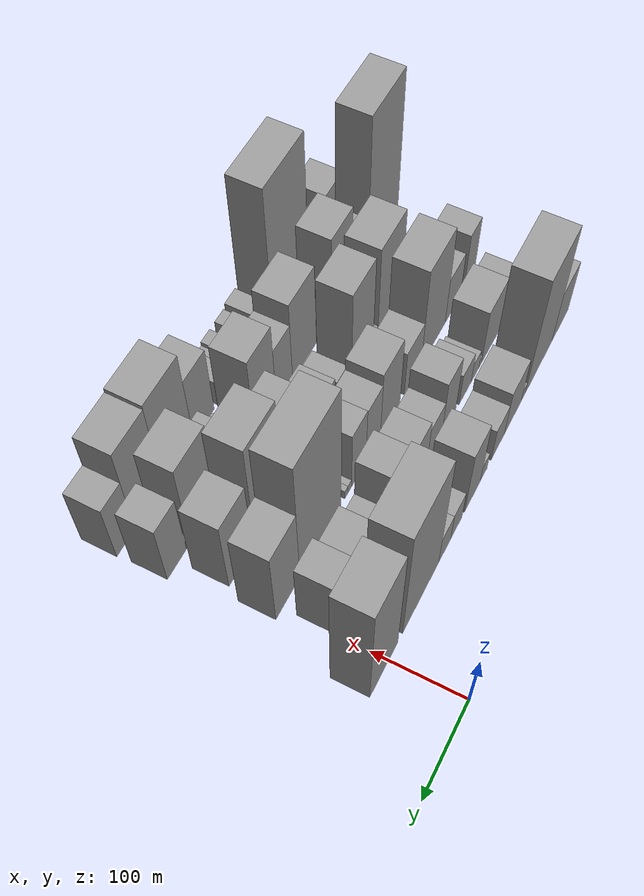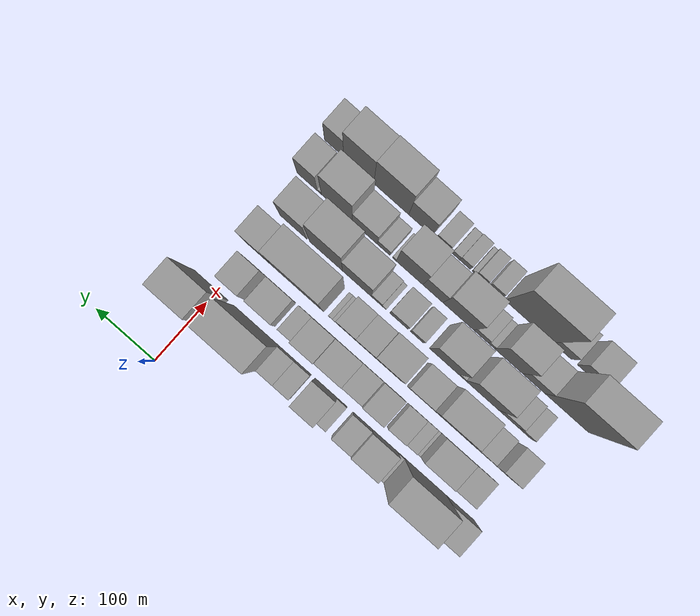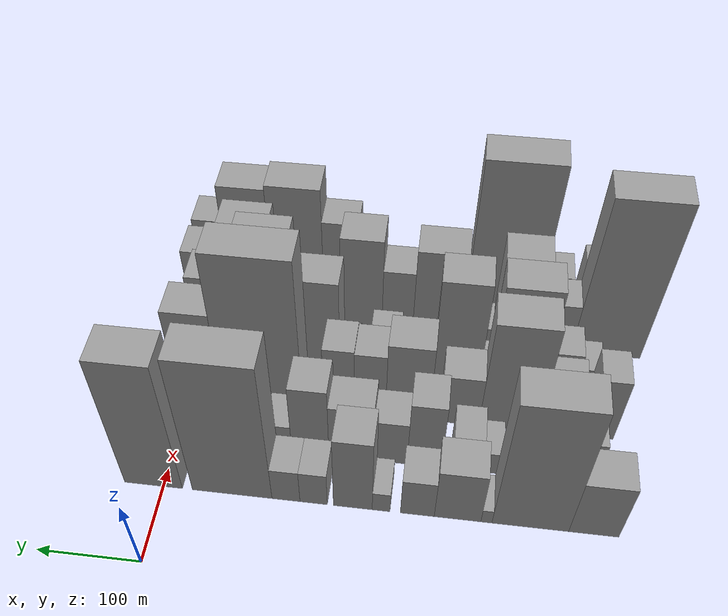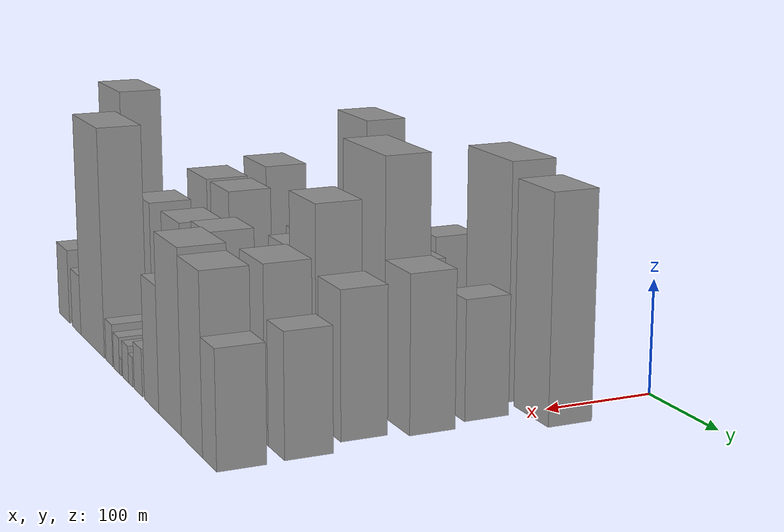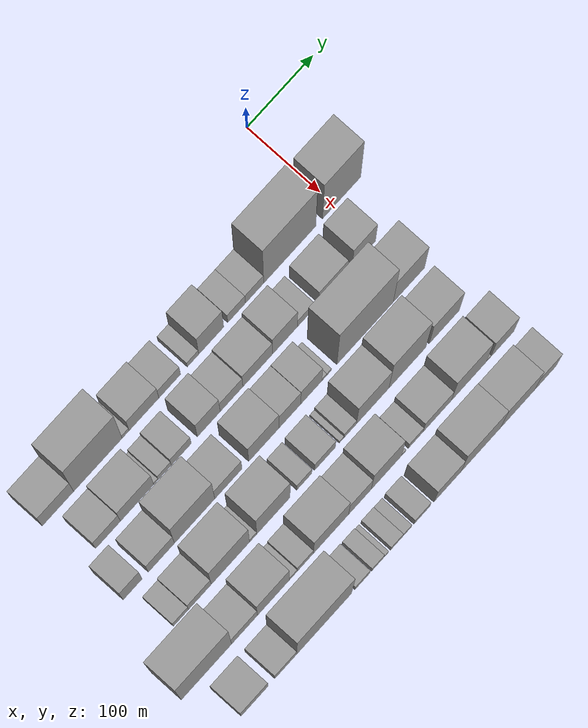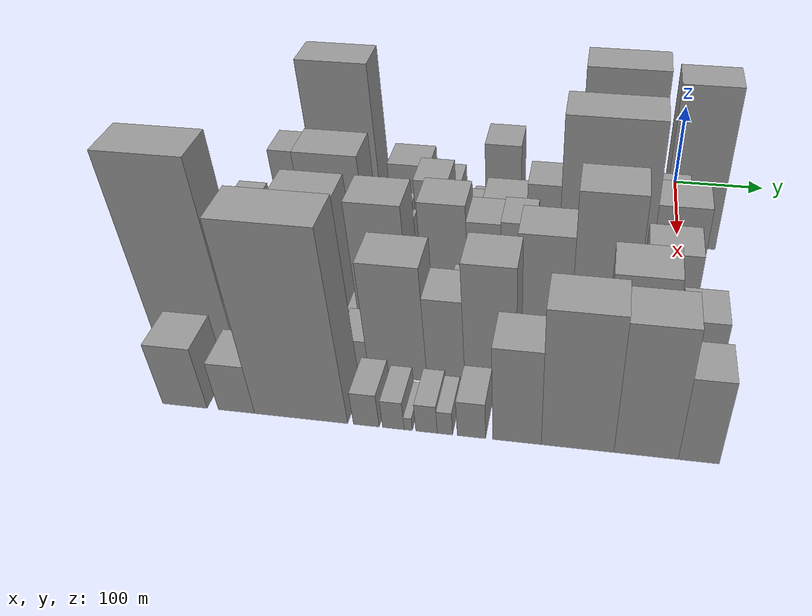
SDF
<sdf version="1.6">
 <world name="default">
  <model name="building_18">
   <static>1</static>
   <pose>100.0000 -414.6206 0 0.000000 0.000000 0.000000</pose>
   <link name="link">
    <pose>0 0 42.00 0 0 0</pose>
    <collision name="collision"><geometry><box><size>40.0000 46.6623 84.0000</size></box></geometry></collision>
    <visual name="visual">
     <cast_shadows>0</cast_shadows>
     <geometry><box><size>40.0000 46.6623 84.0000</size></box></geometry>
     <material>
      <script>
       <uri>model://grey_wall/materials/scripts</uri>
       <uri>model://grey_wall/materials/textures</uri>
       <name>vrc/grey_wall</name>
      </script>
     </material>
    </visual>
   </link>
  </model>
  <model name="building_19">
   <static>1</static>
   <pose>100.0000 -355.2714 0 0.000000 0.000000 0.000000</pose>
   <link name="link">
    <pose>0 0 96.00 0 0 0</pose>
    <collision name="collision"><geometry><box><size>40.0000 72.0362 192.0000</size></box></geometry></collision>
    <visual name="visual">
     <cast_shadows>0</cast_shadows>
     <geometry><box><size>40.0000 72.0362 192.0000</size></box></geometry>
     <material>
      <script>
       <uri>model://grey_wall/materials/scripts</uri>
       <uri>model://grey_wall/materials/textures</uri>
       <name>vrc/grey_wall</name>
      </script>
     </material>
    </visual>
   </link>
  </model>
  <model name="building_20">
   <static>1</static>
   <pose>100.0000 -314.0269 0 0.000000 0.000000 0.000000</pose>
   <link name="link">
    <pose>0 0 10.50 0 0 0</pose>
    <collision name="collision"><geometry><box><size>40.0000 10.4528 21.0000</size></box></geometry></collision>
    <visual name="visual">
     <cast_shadows>0</cast_shadows>
     <geometry><box><size>40.0000 10.4528 21.0000</size></box></geometry>
     <material>
      <script>
       <uri>model://grey_wall/materials/scripts</uri>
       <uri>model://grey_wall/materials/textures</uri>
       <name>vrc/grey_wall</name>
      </script>
     </material>
    </visual>
   </link>
  </model>
  <model name="building_21">
   <static>1</static>
   <pose>100.0000 -286.6192 0 0.000000 0.000000 0.000000</pose>
   <link name="link">
    <pose>0 0 39.00 0 0 0</pose>
    <collision name="collision"><geometry><box><size>40.0000 44.3624 78.0000</size></box></geometry></collision>
    <visual name="visual">
     <cast_shadows>0</cast_shadows>
     <geometry><box><size>40.0000 44.3624 78.0000</size></box></geometry>
     <material>
      <script>
       <uri>model://grey_wall/materials/scripts</uri>
       <uri>model://grey_wall/materials/textures</uri>
       <name>vrc/grey_wall</name>
      </script>
     </material>
    </visual>
   </link>
  </model>
  <model name="building_22">
   <static>1</static>
   <pose>100.0000 -248.2549 0 0.000000 0.000000 0.000000</pose>
   <link name="link">
    <pose>0 0 28.50 0 0 0</pose>
    <collision name="collision"><geometry><box><size>40.0000 32.3662 57.0000</size></box></geometry></collision>
    <visual name="visual">
     <cast_shadows>0</cast_shadows>
     <geometry><box><size>40.0000 32.3662 57.0000</size></box></geometry>
     <material>
      <script>
       <uri>model://grey_wall/materials/scripts</uri>
       <uri>model://grey_wall/materials/textures</uri>
       <name>vrc/grey_wall</name>
      </script>
     </material>
    </visual>
   </link>
  </model>
  <model name="building_23">
   <static>1</static>
   <pose>100.0000 -213.4793 0 0.000000 0.000000 0.000000</pose>
   <link name="link">
    <pose>0 0 15.00 0 0 0</pose>
    <collision name="collision"><geometry><box><size>40.0000 17.1850 30.0000</size></box></geometry></collision>
    <visual name="visual">
     <cast_shadows>0</cast_shadows>
     <geometry><box><size>40.0000 17.1850 30.0000</size></box></geometry>
     <material>
      <script>
       <uri>model://grey_wall/materials/scripts</uri>
       <uri>model://grey_wall/materials/textures</uri>
       <name>vrc/grey_wall</name>
      </script>
     </material>
    </visual>
   </link>
  </model>
  <model name="building_24">
   <static>1</static>
   <pose>100.0000 -186.1850 0 0.000000 0.000000 0.000000</pose>
   <link name="link">
    <pose>0 0 55.50 0 0 0</pose>
    <collision name="collision"><geometry><box><size>40.0000 37.4036 111.0000</size></box></geometry></collision>
    <visual name="visual">
     <cast_shadows>0</cast_shadows>
     <geometry><box><size>40.0000 37.4036 111.0000</size></box></geometry>
     <material>
      <script>
       <uri>model://grey_wall/materials/scripts</uri>
       <uri>model://grey_wall/materials/textures</uri>
       <name>vrc/grey_wall</name>
      </script>
     </material>
    </visual>
   </link>
  </model>
  <model name="building_25">
   <static>1</static>
   <pose>100.0000 -148.1943 0 0.000000 0.000000 0.000000</pose>
   <link name="link">
    <pose>0 0 25.50 0 0 0</pose>
    <collision name="collision"><geometry><box><size>40.0000 26.5778 51.0000</size></box></geometry></collision>
    <visual name="visual">
     <cast_shadows>0</cast_shadows>
     <geometry><box><size>40.0000 26.5778 51.0000</size></box></geometry>
     <material>
      <script>
       <uri>model://grey_wall/materials/scripts</uri>
       <uri>model://grey_wall/materials/textures</uri>
       <name>vrc/grey_wall</name>
      </script>
     </material>
    </visual>
   </link>
  </model>
  <model name="building_26">
   <static>1</static>
   <pose>100.0000 -121.1936 0 0.000000 0.000000 0.000000</pose>
   <link name="link">
    <pose>0 0 25.50 0 0 0</pose>
    <collision name="collision"><geometry><box><size>40.0000 27.4237 51.0000</size></box></geometry></collision>
    <visual name="visual">
     <cast_shadows>0</cast_shadows>
     <geometry><box><size>40.0000 27.4237 51.0000</size></box></geometry>
     <material>
      <script>
       <uri>model://grey_wall/materials/scripts</uri>
       <uri>model://grey_wall/materials/textures</uri>
       <name>vrc/grey_wall</name>
      </script>
     </material>
    </visual>
   </link>
  </model>
  <model name="building_27">
   <static>1</static>
   <pose>100.0000 -68.1438 0 0.000000 0.000000 0.000000</pose>
   <link name="link">
    <pose>0 0 102.00 0 0 0</pose>
    <collision name="collision"><geometry><box><size>40.0000 78.6760 204.0000</size></box></geometry></collision>
    <visual name="visual">
     <cast_shadows>0</cast_shadows>
     <geometry><box><size>40.0000 78.6760 204.0000</size></box></geometry>
     <material>
      <script>
       <uri>model://grey_wall/materials/scripts</uri>
       <uri>model://grey_wall/materials/textures</uri>
       <name>vrc/grey_wall</name>
      </script>
     </material>
    </visual>
   </link>
  </model>
  <model name="building_28">
   <static>1</static>
   <pose>100.0000 10.0778 0 0.000000 0.000000 0.000000</pose>
   <link name="link">
    <pose>0 0 96.00 0 0 0</pose>
    <collision name="collision"><geometry><box><size>40.0000 57.7671 192.0000</size></box></geometry></collision>
    <visual name="visual">
     <cast_shadows>0</cast_shadows>
     <geometry><box><size>40.0000 57.7671 192.0000</size></box></geometry>
     <material>
      <script>
       <uri>model://grey_wall/materials/scripts</uri>
       <uri>model://grey_wall/materials/textures</uri>
       <name>vrc/grey_wall</name>
      </script>
     </material>
    </visual>
   </link>
  </model>
  <model name="building_64">
   <static>1</static>
   <pose>155.0000 -400.5244 0 0.000000 0.000000 0.000000</pose>
   <link name="link">
    <pose>0 0 33.00 0 0 0</pose>
    <collision name="collision"><geometry><box><size>40.0000 36.8902 66.0000</size></box></geometry></collision>
    <visual name="visual">
     <cast_shadows>0</cast_shadows>
     <geometry><box><size>40.0000 36.8902 66.0000</size></box></geometry>
     <material>
      <script>
       <uri>model://grey_wall/materials/scripts</uri>
       <uri>model://grey_wall/materials/textures</uri>
       <name>vrc/grey_wall</name>
      </script>
     </material>
    </visual>
   </link>
  </model>
  <model name="building_65">
   <static>1</static>
   <pose>155.0000 -357.3834 0 0.000000 0.000000 0.000000</pose>
   <link name="link">
    <pose>0 0 45.00 0 0 0</pose>
    <collision name="collision"><geometry><box><size>40.0000 49.3919 90.0000</size></box></geometry></collision>
    <visual name="visual">
     <cast_shadows>0</cast_shadows>
     <geometry><box><size>40.0000 49.3919 90.0000</size></box></geometry>
     <material>
      <script>
       <uri>model://grey_wall/materials/scripts</uri>
       <uri>model://grey_wall/materials/textures</uri>
       <name>vrc/grey_wall</name>
      </script>
     </material>
    </visual>
   </link>
  </model>
  <model name="building_66">
   <static>1</static>
   <pose>155.0000 -329.3998 0 0.000000 0.000000 0.000000</pose>
   <link name="link">
    <pose>0 0 7.50 0 0 0</pose>
    <collision name="collision"><geometry><box><size>40.0000 6.5753 15.0000</size></box></geometry></collision>
    <visual name="visual">
     <cast_shadows>0</cast_shadows>
     <geometry><box><size>40.0000 6.5753 15.0000</size></box></geometry>
     <material>
      <script>
       <uri>model://grey_wall/materials/scripts</uri>
       <uri>model://grey_wall/materials/textures</uri>
       <name>vrc/grey_wall</name>
      </script>
     </material>
    </visual>
   </link>
  </model>
  <model name="building_67">
   <static>1</static>
   <pose>155.0000 -316.3000 0 0.000000 0.000000 0.000000</pose>
   <link name="link">
    <pose>0 0 16.50 0 0 0</pose>
    <collision name="collision"><geometry><box><size>40.0000 19.6243 33.0000</size></box></geometry></collision>
    <visual name="visual">
     <cast_shadows>0</cast_shadows>
     <geometry><box><size>40.0000 19.6243 33.0000</size></box></geometry>
     <material>
      <script>
       <uri>model://grey_wall/materials/scripts</uri>
       <uri>model://grey_wall/materials/textures</uri>
       <name>vrc/grey_wall</name>
      </script>
     </material>
    </visual>
   </link>
  </model>
  <model name="building_68">
   <static>1</static>
   <pose>155.0000 -291.5817 0 0.000000 0.000000 0.000000</pose>
   <link name="link">
    <pose>0 0 27.00 0 0 0</pose>
    <collision name="collision"><geometry><box><size>40.0000 29.8122 54.0000</size></box></geometry></collision>
    <visual name="visual">
     <cast_shadows>0</cast_shadows>
     <geometry><box><size>40.0000 29.8122 54.0000</size></box></geometry>
     <material>
      <script>
       <uri>model://grey_wall/materials/scripts</uri>
       <uri>model://grey_wall/materials/textures</uri>
       <name>vrc/grey_wall</name>
      </script>
     </material>
    </visual>
   </link>
  </model>
  <model name="building_69">
   <static>1</static>
   <pose>155.0000 -250.6024 0 0.000000 0.000000 0.000000</pose>
   <link name="link">
    <pose>0 0 49.50 0 0 0</pose>
    <collision name="collision"><geometry><box><size>40.0000 34.1465 99.0000</size></box></geometry></collision>
    <visual name="visual">
     <cast_shadows>0</cast_shadows>
     <geometry><box><size>40.0000 34.1465 99.0000</size></box></geometry>
     <material>
      <script>
       <uri>model://grey_wall/materials/scripts</uri>
       <uri>model://grey_wall/materials/textures</uri>
       <name>vrc/grey_wall</name>
      </script>
     </material>
    </visual>
   </link>
  </model>
  <model name="building_70">
   <static>1</static>
   <pose>155.0000 -216.5741 0 0.000000 0.000000 0.000000</pose>
   <link name="link">
    <pose>0 0 33.00 0 0 0</pose>
    <collision name="collision"><geometry><box><size>40.0000 33.9102 66.0000</size></box></geometry></collision>
    <visual name="visual">
     <cast_shadows>0</cast_shadows>
     <geometry><box><size>40.0000 33.9102 66.0000</size></box></geometry>
     <material>
      <script>
       <uri>model://grey_wall/materials/scripts</uri>
       <uri>model://grey_wall/materials/textures</uri>
       <name>vrc/grey_wall</name>
      </script>
     </material>
    </visual>
   </link>
  </model>
  <model name="building_71">
   <static>1</static>
   <pose>155.0000 -177.3842 0 0.000000 0.000000 0.000000</pose>
   <link name="link">
    <pose>0 0 40.50 0 0 0</pose>
    <collision name="collision"><geometry><box><size>40.0000 44.4696 81.0000</size></box></geometry></collision>
    <visual name="visual">
     <cast_shadows>0</cast_shadows>
     <geometry><box><size>40.0000 44.4696 81.0000</size></box></geometry>
     <material>
      <script>
       <uri>model://grey_wall/materials/scripts</uri>
       <uri>model://grey_wall/materials/textures</uri>
       <name>vrc/grey_wall</name>
      </script>
     </material>
    </visual>
   </link>
  </model>
  <model name="building_72">
   <static>1</static>
   <pose>155.0000 -136.3937 0 0.000000 0.000000 0.000000</pose>
   <link name="link">
    <pose>0 0 52.50 0 0 0</pose>
    <collision name="collision"><geometry><box><size>40.0000 37.5116 105.0000</size></box></geometry></collision>
    <visual name="visual">
     <cast_shadows>0</cast_shadows>
     <geometry><box><size>40.0000 37.5116 105.0000</size></box></geometry>
     <material>
      <script>
       <uri>model://grey_wall/materials/scripts</uri>
       <uri>model://grey_wall/materials/textures</uri>
       <name>vrc/grey_wall</name>
      </script>
     </material>
    </visual>
   </link>
  </model>
  <model name="building_73">
   <static>1</static>
   <pose>155.0000 -105.1017 0 0.000000 0.000000 0.000000</pose>
   <link name="link">
    <pose>0 0 21.00 0 0 0</pose>
    <collision name="collision"><geometry><box><size>40.0000 25.0723 42.0000</size></box></geometry></collision>
    <visual name="visual">
     <cast_shadows>0</cast_shadows>
     <geometry><box><size>40.0000 25.0723 42.0000</size></box></geometry>
     <material>
      <script>
       <uri>model://grey_wall/materials/scripts</uri>
       <uri>model://grey_wall/materials/textures</uri>
       <name>vrc/grey_wall</name>
      </script>
     </material>
    </visual>
   </link>
  </model>
  <model name="building_74">
   <static>1</static>
   <pose>155.0000 -63.8630 0 0.000000 0.000000 0.000000</pose>
   <link name="link">
    <pose>0 0 37.50 0 0 0</pose>
    <collision name="collision"><geometry><box><size>40.0000 43.4051 75.0000</size></box></geometry></collision>
    <visual name="visual">
     <cast_shadows>0</cast_shadows>
     <geometry><box><size>40.0000 43.4051 75.0000</size></box></geometry>
     <material>
      <script>
       <uri>model://grey_wall/materials/scripts</uri>
       <uri>model://grey_wall/materials/textures</uri>
       <name>vrc/grey_wall</name>
      </script>
     </material>
    </visual>
   </link>
  </model>
  <model name="building_75">
   <static>1</static>
   <pose>155.0000 -38.7111 0 0.000000 0.000000 0.000000</pose>
   <link name="link">
    <pose>0 0 7.50 0 0 0</pose>
    <collision name="collision"><geometry><box><size>40.0000 6.8988 15.0000</size></box></geometry></collision>
    <visual name="visual">
     <cast_shadows>0</cast_shadows>
     <geometry><box><size>40.0000 6.8988 15.0000</size></box></geometry>
     <material>
      <script>
       <uri>model://grey_wall/materials/scripts</uri>
       <uri>model://grey_wall/materials/textures</uri>
       <name>vrc/grey_wall</name>
      </script>
     </material>
    </visual>
   </link>
  </model>
  <model name="building_76">
   <static>1</static>
   <pose>155.0000 -17.6326 0 0.000000 0.000000 0.000000</pose>
   <link name="link">
    <pose>0 0 51.00 0 0 0</pose>
    <collision name="collision"><geometry><box><size>40.0000 35.2581 102.0000</size></box></geometry></collision>
    <visual name="visual">
     <cast_shadows>0</cast_shadows>
     <geometry><box><size>40.0000 35.2581 102.0000</size></box></geometry>
     <material>
      <script>
       <uri>model://grey_wall/materials/scripts</uri>
       <uri>model://grey_wall/materials/textures</uri>
       <name>vrc/grey_wall</name>
      </script>
     </material>
    </visual>
   </link>
  </model>
  <model name="building_114">
   <static>1</static>
   <pose>210.0000 -424.3715 0 0.000000 0.000000 0.000000</pose>
   <link name="link">
    <pose>0 0 46.50 0 0 0</pose>
    <collision name="collision"><geometry><box><size>40.0000 28.2588 93.0000</size></box></geometry></collision>
    <visual name="visual">
     <cast_shadows>0</cast_shadows>
     <geometry><box><size>40.0000 28.2588 93.0000</size></box></geometry>
     <material>
      <script>
       <uri>model://grey_wall/materials/scripts</uri>
       <uri>model://grey_wall/materials/textures</uri>
       <name>vrc/grey_wall</name>
      </script>
     </material>
    </visual>
   </link>
  </model>
  <model name="building_115">
   <static>1</static>
   <pose>210.0000 -381.7486 0 0.000000 0.000000 0.000000</pose>
   <link name="link">
    <pose>0 0 37.50 0 0 0</pose>
    <collision name="collision"><geometry><box><size>40.0000 38.9871 75.0000</size></box></geometry></collision>
    <visual name="visual">
     <cast_shadows>0</cast_shadows>
     <geometry><box><size>40.0000 38.9871 75.0000</size></box></geometry>
     <material>
      <script>
       <uri>model://grey_wall/materials/scripts</uri>
       <uri>model://grey_wall/materials/textures</uri>
       <name>vrc/grey_wall</name>
      </script>
     </material>
    </visual>
   </link>
  </model>
  <model name="building_116">
   <static>1</static>
   <pose>210.0000 -332.3035 0 0.000000 0.000000 0.000000</pose>
   <link name="link">
    <pose>0 0 79.50 0 0 0</pose>
    <collision name="collision"><geometry><box><size>40.0000 59.9031 159.0000</size></box></geometry></collision>
    <visual name="visual">
     <cast_shadows>0</cast_shadows>
     <geometry><box><size>40.0000 59.9031 159.0000</size></box></geometry>
     <material>
      <script>
       <uri>model://grey_wall/materials/scripts</uri>
       <uri>model://grey_wall/materials/textures</uri>
       <name>vrc/grey_wall</name>
      </script>
     </material>
    </visual>
   </link>
  </model>
  <model name="building_117">
   <static>1</static>
   <pose>210.0000 -281.9909 0 0.000000 0.000000 0.000000</pose>
   <link name="link">
    <pose>0 0 37.50 0 0 0</pose>
    <collision name="collision"><geometry><box><size>40.0000 40.7219 75.0000</size></box></geometry></collision>
    <visual name="visual">
     <cast_shadows>0</cast_shadows>
     <geometry><box><size>40.0000 40.7219 75.0000</size></box></geometry>
     <material>
      <script>
       <uri>model://grey_wall/materials/scripts</uri>
       <uri>model://grey_wall/materials/textures</uri>
       <name>vrc/grey_wall</name>
      </script>
     </material>
    </visual>
   </link>
  </model>
  <model name="building_118">
   <static>1</static>
   <pose>210.0000 -228.9417 0 0.000000 0.000000 0.000000</pose>
   <link name="link">
    <pose>0 0 57.00 0 0 0</pose>
    <collision name="collision"><geometry><box><size>40.0000 45.3765 114.0000</size></box></geometry></collision>
    <visual name="visual">
     <cast_shadows>0</cast_shadows>
     <geometry><box><size>40.0000 45.3765 114.0000</size></box></geometry>
     <material>
      <script>
       <uri>model://grey_wall/materials/scripts</uri>
       <uri>model://grey_wall/materials/textures</uri>
       <name>vrc/grey_wall</name>
      </script>
     </material>
    </visual>
   </link>
  </model>
  <model name="building_119">
   <static>1</static>
   <pose>210.0000 -190.0148 0 0.000000 0.000000 0.000000</pose>
   <link name="link">
    <pose>0 0 48.00 0 0 0</pose>
    <collision name="collision"><geometry><box><size>40.0000 32.4773 96.0000</size></box></geometry></collision>
    <visual name="visual">
     <cast_shadows>0</cast_shadows>
     <geometry><box><size>40.0000 32.4773 96.0000</size></box></geometry>
     <material>
      <script>
       <uri>model://grey_wall/materials/scripts</uri>
       <uri>model://grey_wall/materials/textures</uri>
       <name>vrc/grey_wall</name>
      </script>
     </material>
    </visual>
   </link>
  </model>
  <model name="building_120">
   <static>1</static>
   <pose>210.0000 -157.8847 0 0.000000 0.000000 0.000000</pose>
   <link name="link">
    <pose>0 0 49.50 0 0 0</pose>
    <collision name="collision"><geometry><box><size>40.0000 31.7828 99.0000</size></box></geometry></collision>
    <visual name="visual">
     <cast_shadows>0</cast_shadows>
     <geometry><box><size>40.0000 31.7828 99.0000</size></box></geometry>
     <material>
      <script>
       <uri>model://grey_wall/materials/scripts</uri>
       <uri>model://grey_wall/materials/textures</uri>
       <name>vrc/grey_wall</name>
      </script>
     </material>
    </visual>
   </link>
  </model>
  <model name="building_121">
   <static>1</static>
   <pose>210.0000 -138.2729 0 0.000000 0.000000 0.000000</pose>
   <link name="link">
    <pose>0 0 7.50 0 0 0</pose>
    <collision name="collision"><geometry><box><size>40.0000 7.4409 15.0000</size></box></geometry></collision>
    <visual name="visual">
     <cast_shadows>0</cast_shadows>
     <geometry><box><size>40.0000 7.4409 15.0000</size></box></geometry>
     <material>
      <script>
       <uri>model://grey_wall/materials/scripts</uri>
       <uri>model://grey_wall/materials/textures</uri>
       <name>vrc/grey_wall</name>
      </script>
     </material>
    </visual>
   </link>
  </model>
  <model name="building_122">
   <static>1</static>
   <pose>210.0000 -131.0907 0 0.000000 0.000000 0.000000</pose>
   <link name="link">
    <pose>0 0 7.50 0 0 0</pose>
    <collision name="collision"><geometry><box><size>40.0000 6.9236 15.0000</size></box></geometry></collision>
    <visual name="visual">
     <cast_shadows>0</cast_shadows>
     <geometry><box><size>40.0000 6.9236 15.0000</size></box></geometry>
     <material>
      <script>
       <uri>model://grey_wall/materials/scripts</uri>
       <uri>model://grey_wall/materials/textures</uri>
       <name>vrc/grey_wall</name>
      </script>
     </material>
    </visual>
   </link>
  </model>
  <model name="building_123">
   <static>1</static>
   <pose>210.0000 -77.0937 0 0.000000 0.000000 0.000000</pose>
   <link name="link">
    <pose>0 0 108.00 0 0 0</pose>
    <collision name="collision"><geometry><box><size>40.0000 85.0703 216.0000</size></box></geometry></collision>
    <visual name="visual">
     <cast_shadows>0</cast_shadows>
     <geometry><box><size>40.0000 85.0703 216.0000</size></box></geometry>
     <material>
      <script>
       <uri>model://grey_wall/materials/scripts</uri>
       <uri>model://grey_wall/materials/textures</uri>
       <name>vrc/grey_wall</name>
      </script>
     </material>
    </visual>
   </link>
  </model>
  <model name="building_124">
   <static>1</static>
   <pose>210.0000 -10.9256 0 0.000000 0.000000 0.000000</pose>
   <link name="link">
    <pose>0 0 66.00 0 0 0</pose>
    <collision name="collision"><geometry><box><size>40.0000 47.2660 132.0000</size></box></geometry></collision>
    <visual name="visual">
     <cast_shadows>0</cast_shadows>
     <geometry><box><size>40.0000 47.2660 132.0000</size></box></geometry>
     <material>
      <script>
       <uri>model://grey_wall/materials/scripts</uri>
       <uri>model://grey_wall/materials/textures</uri>
       <name>vrc/grey_wall</name>
      </script>
     </material>
    </visual>
   </link>
  </model>
  <model name="building_166">
   <static>1</static>
   <pose>265.0000 -413.1899 0 0.000000 0.000000 0.000000</pose>
   <link name="link">
    <pose>0 0 19.50 0 0 0</pose>
    <collision name="collision"><geometry><box><size>40.0000 22.4448 39.0000</size></box></geometry></collision>
    <visual name="visual">
     <cast_shadows>0</cast_shadows>
     <geometry><box><size>40.0000 22.4448 39.0000</size></box></geometry>
     <material>
      <script>
       <uri>model://grey_wall/materials/scripts</uri>
       <uri>model://grey_wall/materials/textures</uri>
       <name>vrc/grey_wall</name>
      </script>
     </material>
    </visual>
   </link>
  </model>
  <model name="building_167">
   <static>1</static>
   <pose>265.0000 -385.0711 0 0.000000 0.000000 0.000000</pose>
   <link name="link">
    <pose>0 0 30.00 0 0 0</pose>
    <collision name="collision"><geometry><box><size>40.0000 33.7928 60.0000</size></box></geometry></collision>
    <visual name="visual">
     <cast_shadows>0</cast_shadows>
     <geometry><box><size>40.0000 33.7928 60.0000</size></box></geometry>
     <material>
      <script>
       <uri>model://grey_wall/materials/scripts</uri>
       <uri>model://grey_wall/materials/textures</uri>
       <name>vrc/grey_wall</name>
      </script>
     </material>
    </visual>
   </link>
  </model>
  <model name="building_168">
   <static>1</static>
   <pose>265.0000 -339.7269 0 0.000000 0.000000 0.000000</pose>
   <link name="link">
    <pose>0 0 75.00 0 0 0</pose>
    <collision name="collision"><geometry><box><size>40.0000 56.8957 150.0000</size></box></geometry></collision>
    <visual name="visual">
     <cast_shadows>0</cast_shadows>
     <geometry><box><size>40.0000 56.8957 150.0000</size></box></geometry>
     <material>
      <script>
       <uri>model://grey_wall/materials/scripts</uri>
       <uri>model://grey_wall/materials/textures</uri>
       <name>vrc/grey_wall</name>
      </script>
     </material>
    </visual>
   </link>
  </model>
  <model name="building_169">
   <static>1</static>
   <pose>265.0000 -305.8643 0 0.000000 0.000000 0.000000</pose>
   <link name="link">
    <pose>0 0 12.00 0 0 0</pose>
    <collision name="collision"><geometry><box><size>40.0000 10.8294 24.0000</size></box></geometry></collision>
    <visual name="visual">
     <cast_shadows>0</cast_shadows>
     <geometry><box><size>40.0000 10.8294 24.0000</size></box></geometry>
     <material>
      <script>
       <uri>model://grey_wall/materials/scripts</uri>
       <uri>model://grey_wall/materials/textures</uri>
       <name>vrc/grey_wall</name>
      </script>
     </material>
    </visual>
   </link>
  </model>
  <model name="building_170">
   <static>1</static>
   <pose>265.0000 -275.6365 0 0.000000 0.000000 0.000000</pose>
   <link name="link">
    <pose>0 0 75.00 0 0 0</pose>
    <collision name="collision"><geometry><box><size>40.0000 49.6263 150.0000</size></box></geometry></collision>
    <visual name="visual">
     <cast_shadows>0</cast_shadows>
     <geometry><box><size>40.0000 49.6263 150.0000</size></box></geometry>
     <material>
      <script>
       <uri>model://grey_wall/materials/scripts</uri>
       <uri>model://grey_wall/materials/textures</uri>
       <name>vrc/grey_wall</name>
      </script>
     </material>
    </visual>
   </link>
  </model>
  <model name="building_171">
   <static>1</static>
   <pose>265.0000 -229.5233 0 0.000000 0.000000 0.000000</pose>
   <link name="link">
    <pose>0 0 22.50 0 0 0</pose>
    <collision name="collision"><geometry><box><size>40.0000 22.6001 45.0000</size></box></geometry></collision>
    <visual name="visual">
     <cast_shadows>0</cast_shadows>
     <geometry><box><size>40.0000 22.6001 45.0000</size></box></geometry>
     <material>
      <script>
       <uri>model://grey_wall/materials/scripts</uri>
       <uri>model://grey_wall/materials/textures</uri>
       <name>vrc/grey_wall</name>
      </script>
     </material>
    </visual>
   </link>
  </model>
  <model name="building_172">
   <static>1</static>
   <pose>265.0000 -198.6111 0 0.000000 0.000000 0.000000</pose>
   <link name="link">
    <pose>0 0 28.50 0 0 0</pose>
    <collision name="collision"><geometry><box><size>40.0000 31.2242 57.0000</size></box></geometry></collision>
    <visual name="visual">
     <cast_shadows>0</cast_shadows>
     <geometry><box><size>40.0000 31.2242 57.0000</size></box></geometry>
     <material>
      <script>
       <uri>model://grey_wall/materials/scripts</uri>
       <uri>model://grey_wall/materials/textures</uri>
       <name>vrc/grey_wall</name>
      </script>
     </material>
    </visual>
   </link>
  </model>
  <model name="building_173">
   <static>1</static>
   <pose>265.0000 -173.5120 0 0.000000 0.000000 0.000000</pose>
   <link name="link">
    <pose>0 0 7.50 0 0 0</pose>
    <collision name="collision"><geometry><box><size>40.0000 6.9740 15.0000</size></box></geometry></collision>
    <visual name="visual">
     <cast_shadows>0</cast_shadows>
     <geometry><box><size>40.0000 6.9740 15.0000</size></box></geometry>
     <material>
      <script>
       <uri>model://grey_wall/materials/scripts</uri>
       <uri>model://grey_wall/materials/textures</uri>
       <name>vrc/grey_wall</name>
      </script>
     </material>
    </visual>
   </link>
  </model>
  <model name="building_174">
   <static>1</static>
   <pose>265.0000 -160.6924 0 0.000000 0.000000 0.000000</pose>
   <link name="link">
    <pose>0 0 16.50 0 0 0</pose>
    <collision name="collision"><geometry><box><size>40.0000 18.6652 33.0000</size></box></geometry></collision>
    <visual name="visual">
     <cast_shadows>0</cast_shadows>
     <geometry><box><size>40.0000 18.6652 33.0000</size></box></geometry>
     <material>
      <script>
       <uri>model://grey_wall/materials/scripts</uri>
       <uri>model://grey_wall/materials/textures</uri>
       <name>vrc/grey_wall</name>
      </script>
     </material>
    </visual>
   </link>
  </model>
  <model name="building_175">
   <static>1</static>
   <pose>265.0000 -126.9499 0 0.000000 0.000000 0.000000</pose>
   <link name="link">
    <pose>0 0 66.00 0 0 0</pose>
    <collision name="collision"><geometry><box><size>40.0000 48.8199 132.0000</size></box></geometry></collision>
    <visual name="visual">
     <cast_shadows>0</cast_shadows>
     <geometry><box><size>40.0000 48.8199 132.0000</size></box></geometry>
     <material>
      <script>
       <uri>model://grey_wall/materials/scripts</uri>
       <uri>model://grey_wall/materials/textures</uri>
       <name>vrc/grey_wall</name>
      </script>
     </material>
    </visual>
   </link>
  </model>
  <model name="building_176">
   <static>1</static>
   <pose>265.0000 -74.6069 0 0.000000 0.000000 0.000000</pose>
   <link name="link">
    <pose>0 0 90.00 0 0 0</pose>
    <collision name="collision"><geometry><box><size>40.0000 55.8662 180.0000</size></box></geometry></collision>
    <visual name="visual">
     <cast_shadows>0</cast_shadows>
     <geometry><box><size>40.0000 55.8662 180.0000</size></box></geometry>
     <material>
      <script>
       <uri>model://grey_wall/materials/scripts</uri>
       <uri>model://grey_wall/materials/textures</uri>
       <name>vrc/grey_wall</name>
      </script>
     </material>
    </visual>
   </link>
  </model>
  <model name="building_177">
   <static>1</static>
   <pose>265.0000 -18.9260 0 0.000000 0.000000 0.000000</pose>
   <link name="link">
    <pose>0 0 61.50 0 0 0</pose>
    <collision name="collision"><geometry><box><size>40.0000 45.4956 123.0000</size></box></geometry></collision>
    <visual name="visual">
     <cast_shadows>0</cast_shadows>
     <geometry><box><size>40.0000 45.4956 123.0000</size></box></geometry>
     <material>
      <script>
       <uri>model://grey_wall/materials/scripts</uri>
       <uri>model://grey_wall/materials/textures</uri>
       <name>vrc/grey_wall</name>
      </script>
     </material>
    </visual>
   </link>
  </model>
  <model name="building_210">
   <static>1</static>
   <pose>320.0000 -436.0626 0 0.000000 0.000000 0.000000</pose>
   <link name="link">
    <pose>0 0 111.00 0 0 0</pose>
    <collision name="collision"><geometry><box><size>40.0000 74.5065 222.0000</size></box></geometry></collision>
    <visual name="visual">
     <cast_shadows>0</cast_shadows>
     <geometry><box><size>40.0000 74.5065 222.0000</size></box></geometry>
     <material>
      <script>
       <uri>model://grey_wall/materials/scripts</uri>
       <uri>model://grey_wall/materials/textures</uri>
       <name>vrc/grey_wall</name>
      </script>
     </material>
    </visual>
   </link>
  </model>
  <model name="building_211">
   <static>1</static>
   <pose>320.0000 -379.5931 0 0.000000 0.000000 0.000000</pose>
   <link name="link">
    <pose>0 0 36.00 0 0 0</pose>
    <collision name="collision"><geometry><box><size>40.0000 38.4325 72.0000</size></box></geometry></collision>
    <visual name="visual">
     <cast_shadows>0</cast_shadows>
     <geometry><box><size>40.0000 38.4325 72.0000</size></box></geometry>
     <material>
      <script>
       <uri>model://grey_wall/materials/scripts</uri>
       <uri>model://grey_wall/materials/textures</uri>
       <name>vrc/grey_wall</name>
      </script>
     </material>
    </visual>
   </link>
  </model>
  <model name="building_212">
   <static>1</static>
   <pose>320.0000 -336.6073 0 0.000000 0.000000 0.000000</pose>
   <link name="link">
    <pose>0 0 66.00 0 0 0</pose>
    <collision name="collision"><geometry><box><size>40.0000 47.5390 132.0000</size></box></geometry></collision>
    <visual name="visual">
     <cast_shadows>0</cast_shadows>
     <geometry><box><size>40.0000 47.5390 132.0000</size></box></geometry>
     <material>
      <script>
       <uri>model://grey_wall/materials/scripts</uri>
       <uri>model://grey_wall/materials/textures</uri>
       <name>vrc/grey_wall</name>
      </script>
     </material>
    </visual>
   </link>
  </model>
  <model name="building_213">
   <static>1</static>
   <pose>320.0000 -306.9684 0 0.000000 0.000000 0.000000</pose>
   <link name="link">
    <pose>0 0 12.00 0 0 0</pose>
    <collision name="collision"><geometry><box><size>40.0000 11.7388 24.0000</size></box></geometry></collision>
    <visual name="visual">
     <cast_shadows>0</cast_shadows>
     <geometry><box><size>40.0000 11.7388 24.0000</size></box></geometry>
     <material>
      <script>
       <uri>model://grey_wall/materials/scripts</uri>
       <uri>model://grey_wall/materials/textures</uri>
       <name>vrc/grey_wall</name>
      </script>
     </material>
    </visual>
   </link>
  </model>
  <model name="building_214">
   <static>1</static>
   <pose>320.0000 -289.1347 0 0.000000 0.000000 0.000000</pose>
   <link name="link">
    <pose>0 0 21.00 0 0 0</pose>
    <collision name="collision"><geometry><box><size>40.0000 23.9287 42.0000</size></box></geometry></collision>
    <visual name="visual">
     <cast_shadows>0</cast_shadows>
     <geometry><box><size>40.0000 23.9287 42.0000</size></box></geometry>
     <material>
      <script>
       <uri>model://grey_wall/materials/scripts</uri>
       <uri>model://grey_wall/materials/textures</uri>
       <name>vrc/grey_wall</name>
      </script>
     </material>
    </visual>
   </link>
  </model>
  <model name="building_215">
   <static>1</static>
   <pose>320.0000 -250.8736 0 0.000000 0.000000 0.000000</pose>
   <link name="link">
    <pose>0 0 66.00 0 0 0</pose>
    <collision name="collision"><geometry><box><size>40.0000 52.5936 132.0000</size></box></geometry></collision>
    <visual name="visual">
     <cast_shadows>0</cast_shadows>
     <geometry><box><size>40.0000 52.5936 132.0000</size></box></geometry>
     <material>
      <script>
       <uri>model://grey_wall/materials/scripts</uri>
       <uri>model://grey_wall/materials/textures</uri>
       <name>vrc/grey_wall</name>
      </script>
     </material>
    </visual>
   </link>
  </model>
  <model name="building_216">
   <static>1</static>
   <pose>320.0000 -207.5885 0 0.000000 0.000000 0.000000</pose>
   <link name="link">
    <pose>0 0 49.50 0 0 0</pose>
    <collision name="collision"><geometry><box><size>40.0000 33.9765 99.0000</size></box></geometry></collision>
    <visual name="visual">
     <cast_shadows>0</cast_shadows>
     <geometry><box><size>40.0000 33.9765 99.0000</size></box></geometry>
     <material>
      <script>
       <uri>model://grey_wall/materials/scripts</uri>
       <uri>model://grey_wall/materials/textures</uri>
       <name>vrc/grey_wall</name>
      </script>
     </material>
    </visual>
   </link>
  </model>
  <model name="building_217">
   <static>1</static>
   <pose>320.0000 -167.8851 0 0.000000 0.000000 0.000000</pose>
   <link name="link">
    <pose>0 0 70.50 0 0 0</pose>
    <collision name="collision"><geometry><box><size>40.0000 45.4304 141.0000</size></box></geometry></collision>
    <visual name="visual">
     <cast_shadows>0</cast_shadows>
     <geometry><box><size>40.0000 45.4304 141.0000</size></box></geometry>
     <material>
      <script>
       <uri>model://grey_wall/materials/scripts</uri>
       <uri>model://grey_wall/materials/textures</uri>
       <name>vrc/grey_wall</name>
      </script>
     </material>
    </visual>
   </link>
  </model>
  <model name="building_218">
   <static>1</static>
   <pose>320.0000 -141.9161 0 0.000000 0.000000 0.000000</pose>
   <link name="link">
    <pose>0 0 7.50 0 0 0</pose>
    <collision name="collision"><geometry><box><size>40.0000 6.5077 15.0000</size></box></geometry></collision>
    <visual name="visual">
     <cast_shadows>0</cast_shadows>
     <geometry><box><size>40.0000 6.5077 15.0000</size></box></geometry>
     <material>
      <script>
       <uri>model://grey_wall/materials/scripts</uri>
       <uri>model://grey_wall/materials/textures</uri>
       <name>vrc/grey_wall</name>
      </script>
     </material>
    </visual>
   </link>
  </model>
  <model name="building_219">
   <static>1</static>
   <pose>320.0000 -123.7646 0 0.000000 0.000000 0.000000</pose>
   <link name="link">
    <pose>0 0 19.50 0 0 0</pose>
    <collision name="collision"><geometry><box><size>40.0000 21.7951 39.0000</size></box></geometry></collision>
    <visual name="visual">
     <cast_shadows>0</cast_shadows>
     <geometry><box><size>40.0000 21.7951 39.0000</size></box></geometry>
     <material>
      <script>
       <uri>model://grey_wall/materials/scripts</uri>
       <uri>model://grey_wall/materials/textures</uri>
       <name>vrc/grey_wall</name>
      </script>
     </material>
    </visual>
   </link>
  </model>
  <model name="building_220">
   <static>1</static>
   <pose>320.0000 -91.5321 0 0.000000 0.000000 0.000000</pose>
   <link name="link">
    <pose>0 0 37.50 0 0 0</pose>
    <collision name="collision"><geometry><box><size>40.0000 42.6700 75.0000</size></box></geometry></collision>
    <visual name="visual">
     <cast_shadows>0</cast_shadows>
     <geometry><box><size>40.0000 42.6700 75.0000</size></box></geometry>
     <material>
      <script>
       <uri>model://grey_wall/materials/scripts</uri>
       <uri>model://grey_wall/materials/textures</uri>
       <name>vrc/grey_wall</name>
      </script>
     </material>
    </visual>
   </link>
  </model>
  <model name="building_221">
   <static>1</static>
   <pose>320.0000 -43.8277 0 0.000000 0.000000 0.000000</pose>
   <link name="link">
    <pose>0 0 72.00 0 0 0</pose>
    <collision name="collision"><geometry><box><size>40.0000 52.7388 144.0000</size></box></geometry></collision>
    <visual name="visual">
     <cast_shadows>0</cast_shadows>
     <geometry><box><size>40.0000 52.7388 144.0000</size></box></geometry>
     <material>
      <script>
       <uri>model://grey_wall/materials/scripts</uri>
       <uri>model://grey_wall/materials/textures</uri>
       <name>vrc/grey_wall</name>
      </script>
     </material>
    </visual>
   </link>
  </model>
  <model name="building_222">
   <static>1</static>
   <pose>320.0000 -13.9754 0 0.000000 0.000000 0.000000</pose>
   <link name="link">
    <pose>0 0 7.50 0 0 0</pose>
    <collision name="collision"><geometry><box><size>40.0000 6.9659 15.0000</size></box></geometry></collision>
    <visual name="visual">
     <cast_shadows>0</cast_shadows>
     <geometry><box><size>40.0000 6.9659 15.0000</size></box></geometry>
     <material>
      <script>
       <uri>model://grey_wall/materials/scripts</uri>
       <uri>model://grey_wall/materials/textures</uri>
       <name>vrc/grey_wall</name>
      </script>
     </material>
    </visual>
   </link>
  </model>
  <model name="building_223">
   <static>1</static>
   <pose>320.0000 6.9612 0 0.000000 0.000000 0.000000</pose>
   <link name="link">
    <pose>0 0 51.00 0 0 0</pose>
    <collision name="collision"><geometry><box><size>40.0000 34.9073 102.0000</size></box></geometry></collision>
    <visual name="visual">
     <cast_shadows>0</cast_shadows>
     <geometry><box><size>40.0000 34.9073 102.0000</size></box></geometry>
     <material>
      <script>
       <uri>model://grey_wall/materials/scripts</uri>
       <uri>model://grey_wall/materials/textures</uri>
       <name>vrc/grey_wall</name>
      </script>
     </material>
    </visual>
   </link>
  </model>
  <model name="building_261">
   <static>1</static>
   <pose>375.0000 -425.4428 0 0.000000 0.000000 0.000000</pose>
   <link name="link">
    <pose>0 0 36.00 0 0 0</pose>
    <collision name="collision"><geometry><box><size>40.0000 40.1295 72.0000</size></box></geometry></collision>
    <visual name="visual">
     <cast_shadows>0</cast_shadows>
     <geometry><box><size>40.0000 40.1295 72.0000</size></box></geometry>
     <material>
      <script>
       <uri>model://grey_wall/materials/scripts</uri>
       <uri>model://grey_wall/materials/textures</uri>
       <name>vrc/grey_wall</name>
      </script>
     </material>
    </visual>
   </link>
  </model>
  <model name="building_262">
   <static>1</static>
   <pose>375.0000 -379.2287 0 0.000000 0.000000 0.000000</pose>
   <link name="link">
    <pose>0 0 28.50 0 0 0</pose>
    <collision name="collision"><geometry><box><size>40.0000 32.2987 57.0000</size></box></geometry></collision>
    <visual name="visual">
     <cast_shadows>0</cast_shadows>
     <geometry><box><size>40.0000 32.2987 57.0000</size></box></geometry>
     <material>
      <script>
       <uri>model://grey_wall/materials/scripts</uri>
       <uri>model://grey_wall/materials/textures</uri>
       <name>vrc/grey_wall</name>
      </script>
     </material>
    </visual>
   </link>
  </model>
  <model name="building_263">
   <static>1</static>
   <pose>375.0000 -322.2211 0 0.000000 0.000000 0.000000</pose>
   <link name="link">
    <pose>0 0 105.00 0 0 0</pose>
    <collision name="collision"><geometry><box><size>40.0000 81.7166 210.0000</size></box></geometry></collision>
    <visual name="visual">
     <cast_shadows>0</cast_shadows>
     <geometry><box><size>40.0000 81.7166 210.0000</size></box></geometry>
     <material>
      <script>
       <uri>model://grey_wall/materials/scripts</uri>
       <uri>model://grey_wall/materials/textures</uri>
       <name>vrc/grey_wall</name>
      </script>
     </material>
    </visual>
   </link>
  </model>
  <model name="building_264">
   <static>1</static>
   <pose>375.0000 -265.2669 0 0.000000 0.000000 0.000000</pose>
   <link name="link">
    <pose>0 0 19.50 0 0 0</pose>
    <collision name="collision"><geometry><box><size>40.0000 22.1919 39.0000</size></box></geometry></collision>
    <visual name="visual">
     <cast_shadows>0</cast_shadows>
     <geometry><box><size>40.0000 22.1919 39.0000</size></box></geometry>
     <material>
      <script>
       <uri>model://grey_wall/materials/scripts</uri>
       <uri>model://grey_wall/materials/textures</uri>
       <name>vrc/grey_wall</name>
      </script>
     </material>
    </visual>
   </link>
  </model>
  <model name="building_265">
   <static>1</static>
   <pose>375.0000 -241.9616 0 0.000000 0.000000 0.000000</pose>
   <link name="link">
    <pose>0 0 16.50 0 0 0</pose>
    <collision name="collision"><geometry><box><size>40.0000 18.4187 33.0000</size></box></geometry></collision>
    <visual name="visual">
     <cast_shadows>0</cast_shadows>
     <geometry><box><size>40.0000 18.4187 33.0000</size></box></geometry>
     <material>
      <script>
       <uri>model://grey_wall/materials/scripts</uri>
       <uri>model://grey_wall/materials/textures</uri>
       <name>vrc/grey_wall</name>
      </script>
     </material>
    </visual>
   </link>
  </model>
  <model name="building_266">
   <static>1</static>
   <pose>375.0000 -229.2769 0 0.000000 0.000000 0.000000</pose>
   <link name="link">
    <pose>0 0 7.50 0 0 0</pose>
    <collision name="collision"><geometry><box><size>40.0000 6.9507 15.0000</size></box></geometry></collision>
    <visual name="visual">
     <cast_shadows>0</cast_shadows>
     <geometry><box><size>40.0000 6.9507 15.0000</size></box></geometry>
     <material>
      <script>
       <uri>model://grey_wall/materials/scripts</uri>
       <uri>model://grey_wall/materials/textures</uri>
       <name>vrc/grey_wall</name>
      </script>
     </material>
    </visual>
   </link>
  </model>
  <model name="building_267">
   <static>1</static>
   <pose>375.0000 -213.6805 0 0.000000 0.000000 0.000000</pose>
   <link name="link">
    <pose>0 0 16.50 0 0 0</pose>
    <collision name="collision"><geometry><box><size>40.0000 18.2421 33.0000</size></box></geometry></collision>
    <visual name="visual">
     <cast_shadows>0</cast_shadows>
     <geometry><box><size>40.0000 18.2421 33.0000</size></box></geometry>
     <material>
      <script>
       <uri>model://grey_wall/materials/scripts</uri>
       <uri>model://grey_wall/materials/textures</uri>
       <name>vrc/grey_wall</name>
      </script>
     </material>
    </visual>
   </link>
  </model>
  <model name="building_268">
   <static>1</static>
   <pose>375.0000 -198.1153 0 0.000000 0.000000 0.000000</pose>
   <link name="link">
    <pose>0 0 13.50 0 0 0</pose>
    <collision name="collision"><geometry><box><size>40.0000 12.8883 27.0000</size></box></geometry></collision>
    <visual name="visual">
     <cast_shadows>0</cast_shadows>
     <geometry><box><size>40.0000 12.8883 27.0000</size></box></geometry>
     <material>
      <script>
       <uri>model://grey_wall/materials/scripts</uri>
       <uri>model://grey_wall/materials/textures</uri>
       <name>vrc/grey_wall</name>
      </script>
     </material>
    </visual>
   </link>
  </model>
  <model name="building_269">
   <static>1</static>
   <pose>375.0000 -175.7551 0 0.000000 0.000000 0.000000</pose>
   <link name="link">
    <pose>0 0 21.00 0 0 0</pose>
    <collision name="collision"><geometry><box><size>40.0000 23.8321 42.0000</size></box></geometry></collision>
    <visual name="visual">
     <cast_shadows>0</cast_shadows>
     <geometry><box><size>40.0000 23.8321 42.0000</size></box></geometry>
     <material>
      <script>
       <uri>model://grey_wall/materials/scripts</uri>
       <uri>model://grey_wall/materials/textures</uri>
       <name>vrc/grey_wall</name>
      </script>
     </material>
    </visual>
   </link>
  </model>
  <model name="building_270">
   <static>1</static>
   <pose>375.0000 -137.7010 0 0.000000 0.000000 0.000000</pose>
   <link name="link">
    <pose>0 0 54.00 0 0 0</pose>
    <collision name="collision"><geometry><box><size>40.0000 40.2761 108.0000</size></box></geometry></collision>
    <visual name="visual">
     <cast_shadows>0</cast_shadows>
     <geometry><box><size>40.0000 40.2761 108.0000</size></box></geometry>
     <material>
      <script>
       <uri>model://grey_wall/materials/scripts</uri>
       <uri>model://grey_wall/materials/textures</uri>
       <name>vrc/grey_wall</name>
      </script>
     </material>
    </visual>
   </link>
  </model>
  <model name="building_271">
   <static>1</static>
   <pose>375.0000 -87.8041 0 0.000000 0.000000 0.000000</pose>
   <link name="link">
    <pose>0 0 76.50 0 0 0</pose>
    <collision name="collision"><geometry><box><size>40.0000 59.5178 153.0000</size></box></geometry></collision>
    <visual name="visual">
     <cast_shadows>0</cast_shadows>
     <geometry><box><size>40.0000 59.5178 153.0000</size></box></geometry>
     <material>
      <script>
       <uri>model://grey_wall/materials/scripts</uri>
       <uri>model://grey_wall/materials/textures</uri>
       <name>vrc/grey_wall</name>
      </script>
     </material>
    </visual>
   </link>
  </model>
  <model name="building_272">
   <static>1</static>
   <pose>375.0000 -32.1201 0 0.000000 0.000000 0.000000</pose>
   <link name="link">
    <pose>0 0 73.50 0 0 0</pose>
    <collision name="collision"><geometry><box><size>40.0000 51.8501 147.0000</size></box></geometry></collision>
    <visual name="visual">
     <cast_shadows>0</cast_shadows>
     <geometry><box><size>40.0000 51.8501 147.0000</size></box></geometry>
     <material>
      <script>
       <uri>model://grey_wall/materials/scripts</uri>
       <uri>model://grey_wall/materials/textures</uri>
       <name>vrc/grey_wall</name>
      </script>
     </material>
    </visual>
   </link>
  </model>
  <model name="building_273">
   <static>1</static>
   <pose>375.0000 10.1213 0 0.000000 0.000000 0.000000</pose>
   <link name="link">
    <pose>0 0 48.00 0 0 0</pose>
    <collision name="collision"><geometry><box><size>40.0000 32.6327 96.0000</size></box></geometry></collision>
    <visual name="visual">
     <cast_shadows>0</cast_shadows>
     <geometry><box><size>40.0000 32.6327 96.0000</size></box></geometry>
     <material>
      <script>
       <uri>model://grey_wall/materials/scripts</uri>
       <uri>model://grey_wall/materials/textures</uri>
       <name>vrc/grey_wall</name>
      </script>
     </material>
    </visual>
   </link>
  </model>
 </world>
</sdf>
